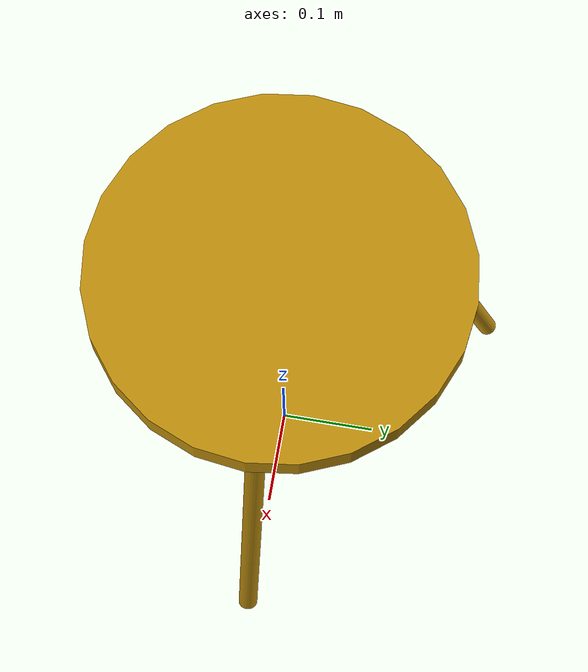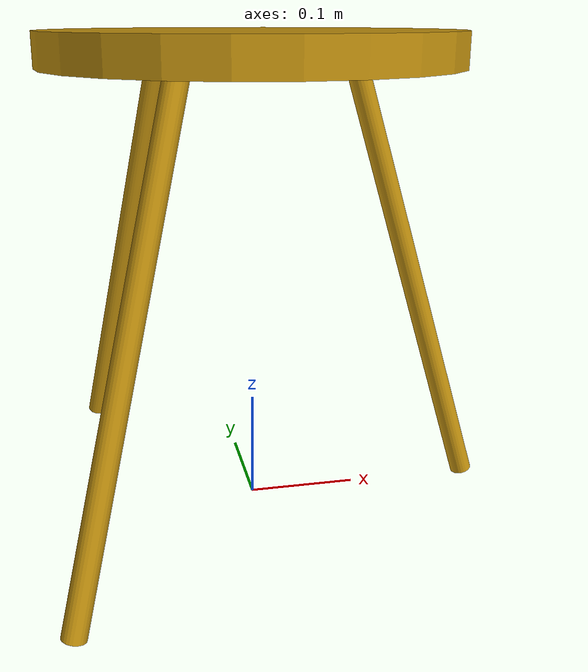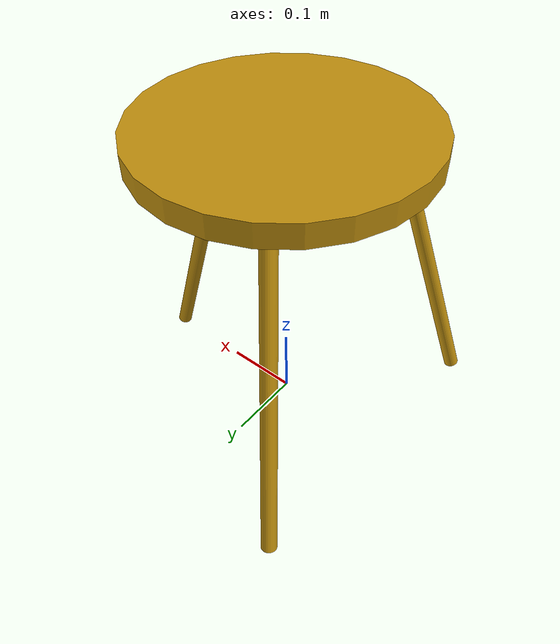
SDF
<?xml version='1.0'?>
<sdf version='1.7'>
  <model name='my_stool'>
    <link name='link'>
      <inertial>
        <mass>1</mass>
        <inertia>
          <ixx>0.145833</ixx>
          <ixy>0</ixy>
          <ixz>0</ixz>
          <iyy>0.145833</iyy>
          <iyz>0</iyz>
          <izz>0.125</izz>
        </inertia>
        <pose>0 0 0 0 -0 0</pose>
      </inertial>
      <self_collide>0</self_collide>
      <enable_wind>0</enable_wind>
      <kinematic>0</kinematic>
      <pose>0 0 0 0 -0 0</pose>
      <gravity>0</gravity>
      <visual name='visual'>
        <geometry>
          <cylinder>
            <radius>0.18</radius>
            <length>0.03</length>
          </cylinder>
        </geometry>
        <material>
          <script>
            <name>Gazebo/Grey</name>
            <uri>file://media/materials/scripts/gazebo.material</uri>
          </script>
          <shader type='pixel'>
            <normal_map>__default__</normal_map>
          </shader>
          <ambient>0.75 0.56 0.05 1</ambient>
          <diffuse>0.75 0.56 0.05 1</diffuse>
          <specular>0.01 0.01 0.01 1</specular>
          <emissive>0 0 0 1</emissive>
        </material>
        <pose>0 0 0.42 0 -0 0</pose>
        <transparency>0</transparency>
        <cast_shadows>1</cast_shadows>
      </visual>
      <collision name='collision'>
        <laser_retro>0</laser_retro>
        <max_contacts>10</max_contacts>
        <pose>0 0 0.42 0 -0 0</pose>
        <geometry>
          <cylinder>
            <radius>0.18</radius>
            <length>0.03</length>
          </cylinder>
        </geometry>
        <surface>
          <friction>
            <ode>
              <mu>1</mu>
              <mu2>1</mu2>
              <fdir1>0 0 0</fdir1>
              <slip1>0</slip1>
              <slip2>0</slip2>
            </ode>
            <torsional>
              <coefficient>1</coefficient>
              <patch_radius>0</patch_radius>
              <surface_radius>0</surface_radius>
              <use_patch_radius>1</use_patch_radius>
              <ode>
                <slip>0</slip>
              </ode>
            </torsional>
          </friction>
          <bounce>
            <restitution_coefficient>0</restitution_coefficient>
            <threshold>1e+06</threshold>
          </bounce>
          <contact>
            <collide_without_contact>0</collide_without_contact>
            <collide_without_contact_bitmask>1</collide_without_contact_bitmask>
            <collide_bitmask>1</collide_bitmask>
            <ode>
              <soft_cfm>0</soft_cfm>
              <soft_erp>0.2</soft_erp>
              <kp>1e+13</kp>
              <kd>1</kd>
              <max_vel>0.01</max_vel>
              <min_depth>0</min_depth>
            </ode>
            <bullet>
              <split_impulse>1</split_impulse>
              <split_impulse_penetration_threshold>-0.01</split_impulse_penetration_threshold>
              <soft_cfm>0</soft_cfm>
              <soft_erp>0.2</soft_erp>
              <kp>1e+13</kp>
              <kd>1</kd>
            </bullet>
          </contact>
        </surface>
      </collision>
    </link>
    <link name='link_clone'>
      <inertial>
        <mass>1</mass>
        <inertia>
          <ixx>0.145833</ixx>
          <ixy>0</ixy>
          <ixz>0</ixz>
          <iyy>0.145833</iyy>
          <iyz>0</iyz>
          <izz>0.125</izz>
        </inertia>
        <pose>0 0 0 0 -0 0</pose>
      </inertial>
      <self_collide>0</self_collide>
      <enable_wind>0</enable_wind>
      <kinematic>0</kinematic>
      <pose>0.154365 -0.002852 0.007514 0 -0 0</pose>
      <gravity>0</gravity>
      <visual name='visual'>
        <geometry>
          <cylinder>
            <radius>0.01</radius>
            <length>0.42</length>
          </cylinder>
        </geometry>
        <material>
          <script>
            <name>Gazebo/Grey</name>
            <uri>file://media/materials/scripts/gazebo.material</uri>
          </script>
          <shader type='pixel'>
            <normal_map>__default__</normal_map>
          </shader>
          <ambient>0.75 0.56 0.05 1</ambient>
          <diffuse>0.75 0.56 0.05 1</diffuse>
          <specular>0.01 0.01 0.01 1</specular>
          <emissive>0 0 0 1</emissive>
        </material>
        <pose>0 0 0.196 0 -0.3 0</pose>
        <transparency>0</transparency>
        <cast_shadows>1</cast_shadows>
      </visual>
      <collision name='collision'>
        <laser_retro>0</laser_retro>
        <max_contacts>10</max_contacts>
        <pose>0 0 0.196 0 -0.3 0</pose>
        <geometry>
          <cylinder>
            <radius>0.01</radius>
            <length>0.42</length>
          </cylinder>
        </geometry>
        <surface>
          <friction>
            <ode>
              <mu>1</mu>
              <mu2>1</mu2>
              <fdir1>0 0 0</fdir1>
              <slip1>0</slip1>
              <slip2>0</slip2>
            </ode>
            <torsional>
              <coefficient>1</coefficient>
              <patch_radius>0</patch_radius>
              <surface_radius>0</surface_radius>
              <use_patch_radius>1</use_patch_radius>
              <ode>
                <slip>0</slip>
              </ode>
            </torsional>
          </friction>
          <bounce>
            <restitution_coefficient>0</restitution_coefficient>
            <threshold>1e+06</threshold>
          </bounce>
          <contact>
            <collide_without_contact>0</collide_without_contact>
            <collide_without_contact_bitmask>1</collide_without_contact_bitmask>
            <collide_bitmask>1</collide_bitmask>
            <ode>
              <soft_cfm>0</soft_cfm>
              <soft_erp>0.2</soft_erp>
              <kp>1e+13</kp>
              <kd>1</kd>
              <max_vel>0.01</max_vel>
              <min_depth>0</min_depth>
            </ode>
            <bullet>
              <split_impulse>1</split_impulse>
              <split_impulse_penetration_threshold>-0.01</split_impulse_penetration_threshold>
              <soft_cfm>0</soft_cfm>
              <soft_erp>0.2</soft_erp>
              <kp>1e+13</kp>
              <kd>1</kd>
            </bullet>
          </contact>
        </surface>
      </collision>
    </link>
    <link name='link_clone_clone'>
      <inertial>
        <mass>1</mass>
        <inertia>
          <ixx>0.145833</ixx>
          <ixy>0</ixy>
          <ixz>0</ixz>
          <iyy>0.145833</iyy>
          <iyz>0</iyz>
          <izz>0.125</izz>
        </inertia>
        <pose>0 0 0 0 -0 0</pose>
      </inertial>
      <self_collide>0</self_collide>
      <enable_wind>0</enable_wind>
      <kinematic>0</kinematic>
      <pose>-0.108427 0.162559 0.007514 0 -0 2.21012</pose>
      <gravity>0</gravity>
      <visual name='visual'>
        <geometry>
          <cylinder>
            <radius>0.01</radius>
            <length>0.42</length>
          </cylinder>
        </geometry>
        <material>
          <script>
            <name>Gazebo/Grey</name>
            <uri>file://media/materials/scripts/gazebo.material</uri>
          </script>
          <shader type='pixel'>
            <normal_map>__default__</normal_map>
          </shader>
          <ambient>0.75 0.56 0.05 1</ambient>
          <diffuse>0.75 0.56 0.05 1</diffuse>
          <specular>0.01 0.01 0.01 1</specular>
          <emissive>0 0 0 1</emissive>
        </material>
        <pose>0 0 0.196 0 -0.3 0</pose>
        <transparency>0</transparency>
        <cast_shadows>1</cast_shadows>
      </visual>
      <collision name='collision'>
        <laser_retro>0</laser_retro>
        <max_contacts>10</max_contacts>
        <pose>0 0 0.14 0 -0.3 0</pose>
        <geometry>
          <cylinder>
            <radius>0.01</radius>
            <length>0.42</length>
          </cylinder>
        </geometry>
        <surface>
          <friction>
            <ode>
              <mu>1</mu>
              <mu2>1</mu2>
              <fdir1>0 0 0</fdir1>
              <slip1>0</slip1>
              <slip2>0</slip2>
            </ode>
            <torsional>
              <coefficient>1</coefficient>
              <patch_radius>0</patch_radius>
              <surface_radius>0</surface_radius>
              <use_patch_radius>1</use_patch_radius>
              <ode>
                <slip>0</slip>
              </ode>
            </torsional>
          </friction>
          <bounce>
            <restitution_coefficient>0</restitution_coefficient>
            <threshold>1e+06</threshold>
          </bounce>
          <contact>
            <collide_without_contact>0</collide_without_contact>
            <collide_without_contact_bitmask>1</collide_without_contact_bitmask>
            <collide_bitmask>1</collide_bitmask>
            <ode>
              <soft_cfm>0</soft_cfm>
              <soft_erp>0.2</soft_erp>
              <kp>1e+13</kp>
              <kd>1</kd>
              <max_vel>0.01</max_vel>
              <min_depth>0</min_depth>
            </ode>
            <bullet>
              <split_impulse>1</split_impulse>
              <split_impulse_penetration_threshold>-0.01</split_impulse_penetration_threshold>
              <soft_cfm>0</soft_cfm>
              <soft_erp>0.2</soft_erp>
              <kp>1e+13</kp>
              <kd>1</kd>
            </bullet>
          </contact>
        </surface>
      </collision>
    </link>
    <link name='link_clone_clone_clone'>
      <inertial>
        <mass>1</mass>
        <inertia>
          <ixx>0.145833</ixx>
          <ixy>0</ixy>
          <ixz>0</ixz>
          <iyy>0.145833</iyy>
          <iyz>0</iyz>
          <izz>0.125</izz>
        </inertia>
        <pose>0 0 0 0 -0 0</pose>
      </inertial>
      <self_collide>0</self_collide>
      <enable_wind>0</enable_wind>
      <kinematic>0</kinematic>
      <pose>-0.123134 -0.149725 0.010416 0 0 -2.45292</pose>
      <gravity>1</gravity>
      <visual name='visual'>
        <geometry>
          <cylinder>
            <radius>0.01</radius>
            <length>0.42</length>
          </cylinder>
        </geometry>
        <material>
          <script>
            <name>Gazebo/Grey</name>
            <uri>file://media/materials/scripts/gazebo.material</uri>
          </script>
          <shader type='pixel'>
            <normal_map>__default__</normal_map>
          </shader>
          <ambient>0.75 0.56 0.05 1</ambient>
          <diffuse>0.75 0.56 0.05 1</diffuse>
          <specular>0.01 0.01 0.01 1</specular>
          <emissive>0 0 0 1</emissive>
        </material>
        <pose>0 0 0.196 0 -0.3 0</pose>
        <transparency>0</transparency>
        <cast_shadows>1</cast_shadows>
      </visual>
      <collision name='collision'>
        <laser_retro>0</laser_retro>
        <max_contacts>10</max_contacts>
        <pose>0 0 0.196 0 -0.3 0</pose>
        <geometry>
          <cylinder>
            <radius>0.01</radius>
            <length>0.42</length>
          </cylinder>
        </geometry>
        <surface>
          <friction>
            <ode>
              <mu>1</mu>
              <mu2>1</mu2>
              <fdir1>0 0 0</fdir1>
              <slip1>0</slip1>
              <slip2>0</slip2>
            </ode>
            <torsional>
              <coefficient>1</coefficient>
              <patch_radius>0</patch_radius>
              <surface_radius>0</surface_radius>
              <use_patch_radius>1</use_patch_radius>
              <ode>
                <slip>0</slip>
              </ode>
            </torsional>
          </friction>
          <bounce>
            <restitution_coefficient>0</restitution_coefficient>
            <threshold>1e+06</threshold>
          </bounce>
          <contact>
            <collide_without_contact>0</collide_without_contact>
            <collide_without_contact_bitmask>1</collide_without_contact_bitmask>
            <collide_bitmask>1</collide_bitmask>
            <ode>
              <soft_cfm>0</soft_cfm>
              <soft_erp>0.2</soft_erp>
              <kp>1e+13</kp>
              <kd>1</kd>
              <max_vel>0.01</max_vel>
              <min_depth>0</min_depth>
            </ode>
            <bullet>
              <split_impulse>1</split_impulse>
              <split_impulse_penetration_threshold>-0.01</split_impulse_penetration_threshold>
              <soft_cfm>0</soft_cfm>
              <soft_erp>0.2</soft_erp>
              <kp>1e+13</kp>
              <kd>1</kd>
            </bullet>
          </contact>
        </surface>
      </collision>
    </link>
    <static>1</static>
    <allow_auto_disable>1</allow_auto_disable>
  </model>
</sdf>
